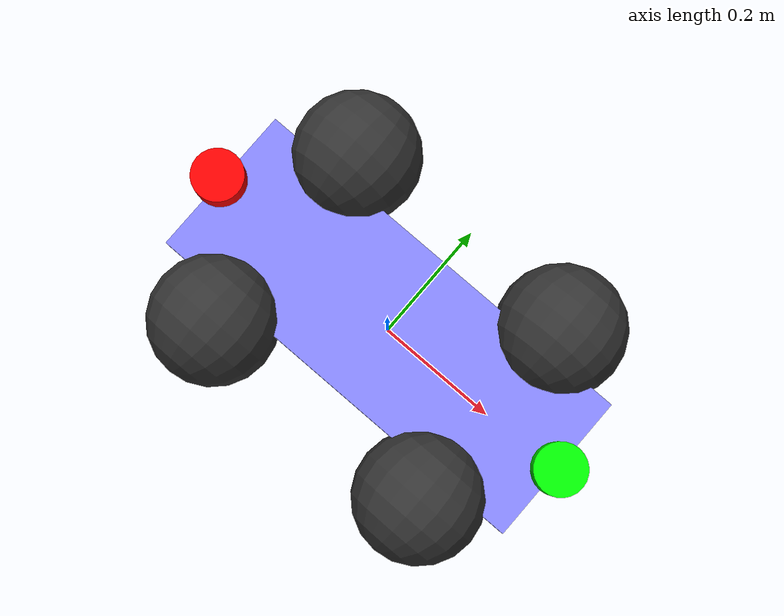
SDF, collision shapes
<?xml version="1.0" ?>
<sdf version="1.6">
  <model name='sambirion'>

    <!-- The base_link is a common convention in ROS for a non-colliding link at ground level. -->
    <link name='base_link'>
      <pose>0 0 0 0 0 0</pose>
    </link>

    <!-- This joint rigidly connects the chassis to the base_link. -->
    <joint name='base_link_to_chassis' type='fixed'>
      <parent>base_link</parent>
      <child>chassis</child>
    </joint>

    <link name='chassis'>
        <pose>0 0 0.0875 0 0 0</pose>
      <inertial>
        <mass>1.14395</mass>
        <inertia>
          <ixx>0.126164</ixx>
          <ixy>0</ixy>
          <ixz>0</ixz>
          <iyy>0.416519</iyy>
          <iyz>0</iyz>
          <izz>0.481014</izz>
        </inertia>
      </inertial>
      <visual name='visual'>
        <geometry>
          <box>
            <size>0.65 0.245 0.05</size>
          </box>
        </geometry>
        <material>
          <ambient>0.5 0.5 1.0 1</ambient>
          <diffuse>0.5 0.5 1.0 1</diffuse>
          <specular>0.0 0.0 1.0 1</specular>
        </material>
      </visual>
      <collision name='collision'>
        <geometry>
          <box>
            <size>0.65 0.245 0.05</size>
          </box>
        </geometry>
      </collision>
    </link>

    <!-- Wheel Links -->
    <link name='front_left_wheel'>
        <pose relative_to="chassis">0.2 0.1625 0 -1.5707 0 0</pose>
      <inertial>
        <mass>2</mass>
        <inertia>
          <ixx>0.145833</ixx>
          <ixy>0</ixy>
          <ixz>0</ixz>
          <iyy>0.145833</iyy>
          <iyz>0</iyz>
          <izz>0.125</izz>
        </inertia>
      </inertial>
      <visual name='visual'>
        <pose>0 0 0 1.5707 0 0</pose>
        <geometry>
          <mesh>
            <uri>/root/sambirion/src/sambirion_description/models/sambirion/meshes/mecanum_wheel_left.STL</uri>
            <scale>0.002 0.002 0.002</scale>
          </mesh>
        </geometry>
        <material>
          <ambient>0.2 0.2 0.2 1</ambient>
          <diffuse>0.2 0.2 0.2 1</diffuse>
          <specular>0.2 0.2 0.2 1</specular>
        </material>
      </visual>
      <collision name='collision'>
        <geometry>
          <sphere>
            <radius>0.1</radius>
          </sphere>
        </geometry>
        <surface>
          <friction>
            <ode>
              <mu>1.0</mu>
              <mu2>0.0</mu2>
              <!-- The friction direction for Mecanum wheels is complex and often handled by plugins. -->
              <!-- This fdir1 is a simplification. -->
              <fdir1>1 -1 0</fdir1>
            </ode>
          </friction>
        </surface>
      </collision>
    </link>

    <link name='rear_left_wheel'>
        <pose relative_to="chassis">-0.2 0.1625 0 -1.5707 0 0</pose>
      <inertial>
        <mass>2</mass>
        <inertia>
          <ixx>0.145833</ixx>
          <ixy>0</ixy>
          <ixz>0</ixz>
          <iyy>0.145833</iyy>
          <iyz>0</iyz>
          <izz>0.125</izz>
        </inertia>
      </inertial>
      <visual name='visual'>
        <pose>0 0 0 1.5707 0 0</pose>
        <geometry>
          <mesh>
            <uri>/root/sambirion/src/sambirion_description/models/sambirion/meshes/mecanum_wheel_right.STL</uri>
            <scale>0.002 0.002 0.002</scale>
          </mesh>
        </geometry>
        <material>
          <ambient>0.2 0.2 0.2 1</ambient>
          <diffuse>0.2 0.2 0.2 1</diffuse>
          <specular>0.2 0.2 0.2 1</specular>
        </material>
      </visual>
      <collision name='collision'>
        <geometry>
          <sphere>
            <radius>0.1</radius>
          </sphere>
        </geometry>
        <surface>
          <friction>
            <ode>
              <mu>1.0</mu>
              <mu2>0.0</mu2>
              <fdir1>1 1 0</fdir1>
            </ode>
          </friction>
        </surface>
      </collision>
    </link>

    <link name='front_right_wheel'>
        <pose relative_to="chassis">0.2 -0.1625 0 -1.5707 0 0</pose>
      <inertial>
        <mass>2</mass>
        <inertia>
          <ixx>0.145833</ixx>
          <ixy>0</ixy>
          <ixz>0</ixz>
          <iyy>0.145833</iyy>
          <iyz>0</iyz>
          <izz>0.125</izz>
        </inertia>
      </inertial>
      <visual name='visual'>
        <pose>0 0 0 1.5707 0 0</pose>
        <geometry>
          <mesh>
            <uri>/root/sambirion/src/sambirion_description/models/sambirion/meshes/mecanum_wheel_right.STL</uri>
            <scale>0.002 0.002 0.002</scale>
          </mesh>
        </geometry>
        <material>
          <ambient>0.2 0.2 0.2 1</ambient>
          <diffuse>0.2 0.2 0.2 1</diffuse>
          <specular>0.2 0.2 0.2 1</specular>
        </material>
      </visual>
      <collision name='collision'>
        <geometry>
          <sphere>
            <radius>0.1</radius>
          </sphere>
        </geometry>
        <surface>
          <friction>
            <ode>
              <mu>1.0</mu>
              <mu2>0.0</mu2>
              <fdir1>1 1 0</fdir1>
            </ode>
          </friction>
        </surface>
      </collision>
    </link>

    <link name='rear_right_wheel'>
        <pose relative_to="chassis">-0.2 -0.1625 0 -1.5707 0 0</pose>
      <inertial>
        <mass>2</mass>
        <inertia>
          <ixx>0.145833</ixx>
          <ixy>0</ixy>
          <ixz>0</ixz>
          <iyy>0.145833</iyy>
          <iyz>0</iyz>
          <izz>0.125</izz>
        </inertia>
      </inertial>
      <visual name='visual'>
        <pose>0 0 0 1.5707 0 0</pose>
        <geometry>
          <mesh>
            <uri>/root/sambirion/src/sambirion_description/models/sambirion/meshes/mecanum_wheel_left.STL</uri>
            <scale>0.002 0.002 0.002</scale>
          </mesh>
        </geometry>
        <material>
          <ambient>0.2 0.2 0.2 1</ambient>
          <diffuse>0.2 0.2 0.2 1</diffuse>
          <specular>0.2 0.2 0.2 1</specular>
        </material>
      </visual>
      <collision name='collision'>
        <geometry>
          <sphere>
            <radius>0.1</radius>
          </sphere>
        </geometry>
        <surface>
          <friction>
            <ode>
              <mu>1.0</mu>
              <mu2>0.0</mu2>
              <fdir1>1 -1 0</fdir1>
            </ode>
          </friction>
        </surface>
      </collision>
    </link>

    <!-- Wheel Joints -->
    <joint name='front_left_wheel_joint' type='revolute'>
      <parent>chassis</parent>
      <child>front_left_wheel</child>
      <axis>
        <xyz>0 0 1</xyz>
        <limit>
          <lower>-1.79769e+308</lower>
          <upper>1.79769e+308</upper>
        </limit>
      </axis>
    </joint>

    <joint name='front_right_wheel_joint' type='revolute'>
      <parent>chassis</parent>
      <child>front_right_wheel</child>
      <axis>
        <xyz>0 0 1</xyz>
        <limit>
          <lower>-1.79769e+308</lower>
          <upper>1.79769e+308</upper>
        </limit>
      </axis>
    </joint>

    <joint name='rear_left_wheel_joint' type='revolute'>
      <parent>chassis</parent>
      <child>rear_left_wheel</child>
      <axis>
        <xyz>0 0 1</xyz>
        <limit>
          <lower>-1.79769e+308</lower>
          <upper>1.79769e+308</upper>
        </limit>
      </axis>
    </joint>

    <joint name='rear_right_wheel_joint' type='revolute'>
      <parent>chassis</parent>
      <child>rear_right_wheel</child>
      <axis>
        <xyz>0 0 1</xyz>
        <limit>
          <lower>-1.79769e+308</lower>
          <upper>1.79769e+308</upper>
        </limit>
      </axis>
    </joint>

    <!-- Front Lidar Sensor -->
    <link name="front_lidar_link">
        <pose relative_to="chassis">0.325 0 0.045 0 0 0</pose>
      <inertial>
        <mass>0.1</mass>
        <inertia>
          <ixx>0.000166667</ixx>
          <iyy>0.000166667</iyy>
          <izz>0.000166667</izz>
        </inertia>
      </inertial>
      <collision name="collision">
        <geometry>
          <cylinder>
            <radius>0.04</radius>
            <length>0.04</length>
          </cylinder>
        </geometry>
      </collision>
      <visual name="visual">
        <geometry>
          <cylinder>
            <radius>0.04</radius>
            <length>0.04</length>
          </cylinder>
        </geometry>
        <material>
          <ambient>0.0 1.0 0.0 1</ambient>
          <diffuse>0.0 1.0 0.0 1</diffuse>
          <specular>0.0 1.0 0.0 1</specular>
        </material>
      </visual>
      <!-- The sensor definition for Gazebo Classic -->
      <sensor name='front_gpu_lidar' type='ray'>
        <pose>0 0 0 0 0 0</pose>
        <update_rate>10</update_rate>
        <ray>
          <scan>
            <horizontal>
              <samples>640</samples>
              <resolution>1</resolution>
              <min_angle>-1.396263</min_angle>
              <max_angle>1.396263</max_angle>
            </horizontal>
          </scan>
          <range>
            <min>0.08</min>
            <max>10.0</max>
            <resolution>0.01</resolution>
          </range>
        </ray>
        <visualize>true</visualize>
        <!-- The plugin that connects the sensor to ROS -->
       <plugin name="gazebo_ros_front_ray_sensor" filename="libgazebo_ros_ray_sensor.so">
          <ros>
            <namespace>/</namespace>
            <remapping>~/out:=/front_scan</remapping>
          </ros>
          <output_type>sensor_msgs/LaserScan</output_type>
          <frame_name>front_lidar_link</frame_name>
        </plugin>
      </sensor>
    </link>

    <joint name='front_lidar_joint' type='fixed'>
      <parent>chassis</parent>
      <child>front_lidar_link</child>
    </joint>

    <!-- Rear Lidar Sensor -->
    <link name="rear_lidar_link">
        <pose relative_to="chassis">-0.325 0 0.045 0 0 3.14159</pose>
      <inertial>
        <mass>0.1</mass>
        <inertia>
          <ixx>0.000166667</ixx>
          <iyy>0.000166667</iyy>
          <izz>0.000166667</izz>
        </inertia>
      </inertial>
      <collision name="collision">
        <geometry>
          <cylinder>
            <radius>0.04</radius>
            <length>0.04</length>
          </cylinder>
        </geometry>
      </collision>
      <visual name="visual">
        <geometry>
          <cylinder>
            <radius>0.04</radius>
            <length>0.04</length>
          </cylinder>
        </geometry>
        <material>
          <ambient>1.0 0.0 0.0 1</ambient>
          <diffuse>1.0 0.0 0.0 1</diffuse>
          <specular>1.0 0.0 0.0 1</specular>
        </material>
      </visual>
      <!-- The sensor definition for Gazebo Classic -->
      <sensor name='rear_gpu_lidar' type='ray'>
        <pose>0 0 0 0 0 0</pose>
        <update_rate>10</update_rate>
        <ray>
          <scan>
            <horizontal>
              <samples>640</samples>
              <resolution>1</resolution>
              <min_angle>-1.396263</min_angle>
              <max_angle>1.396263</max_angle>
            </horizontal>
          </scan>
          <range>
            <min>0.08</min>
            <max>10.0</max>
            <resolution>0.01</resolution>
          </range>
        </ray>
        <visualize>true</visualize>
        <!-- The plugin that connects the sensor to ROS -->
        <plugin name="gazebo_ros_rear_ray_sensor" filename="libgazebo_ros_ray_sensor.so">
          <ros>
            <namespace>/</namespace>
            <remapping>~/out:=/rear_scan</remapping>
          </ros>
          <output_type>sensor_msgs/LaserScan</output_type>
          <frame_name>rear_lidar_link</frame_name>
        </plugin>

      </sensor>
    </link>

    <joint name='rear_lidar_joint' type='fixed'>
      <parent>chassis</parent>
      <child>rear_lidar_link</child>
    </joint>

    <!-- The Gazebo Classic plugin for Mecanum drive -->
    <!-- Note: This is a common community plugin. Ensure it's installed or use an alternative like gazebo_ros_control. -->
    <plugin name="planar_move_controller" filename="libgazebo_ros_planar_move.so">
  <ros>
    <namespace>/</namespace>
    <remapping>cmd_vel:=cmd_vel</remapping>
    <remapping>odom:=odom</remapping>
  </ros>
  <command_topic>cmd_vel</command_topic>
  <odometry_topic>odom</odometry_topic>
  <odometry_frame>odom</odometry_frame>
  <robot_base_frame>base_link</robot_base_frame>
  <publish_odometry>true</publish_odometry>
  <publish_odom_tf>true</publish_odom_tf>
</plugin>

  </model>
</sdf>
